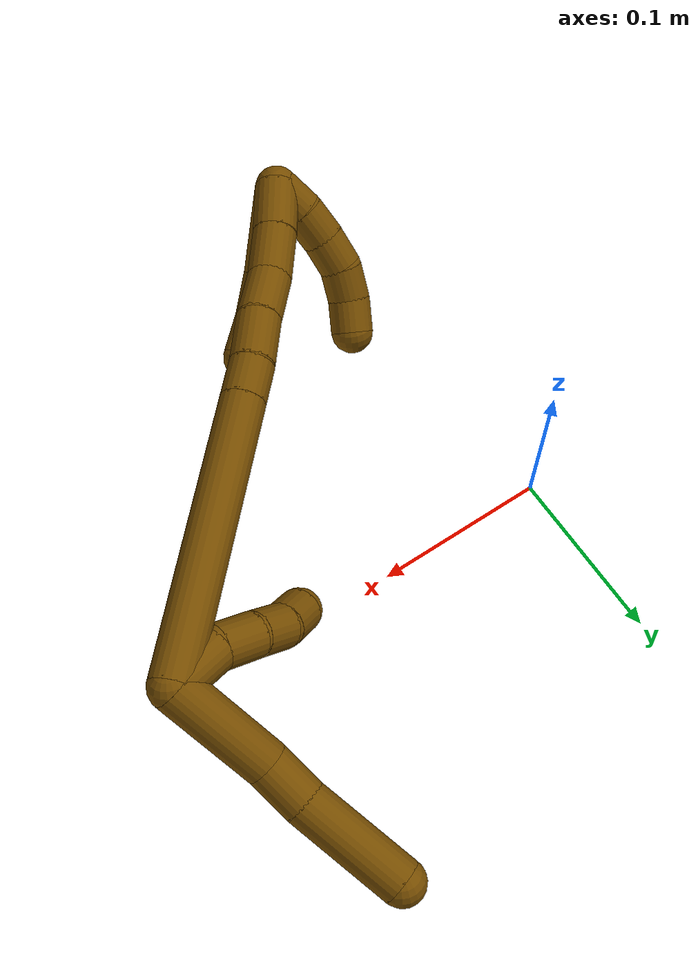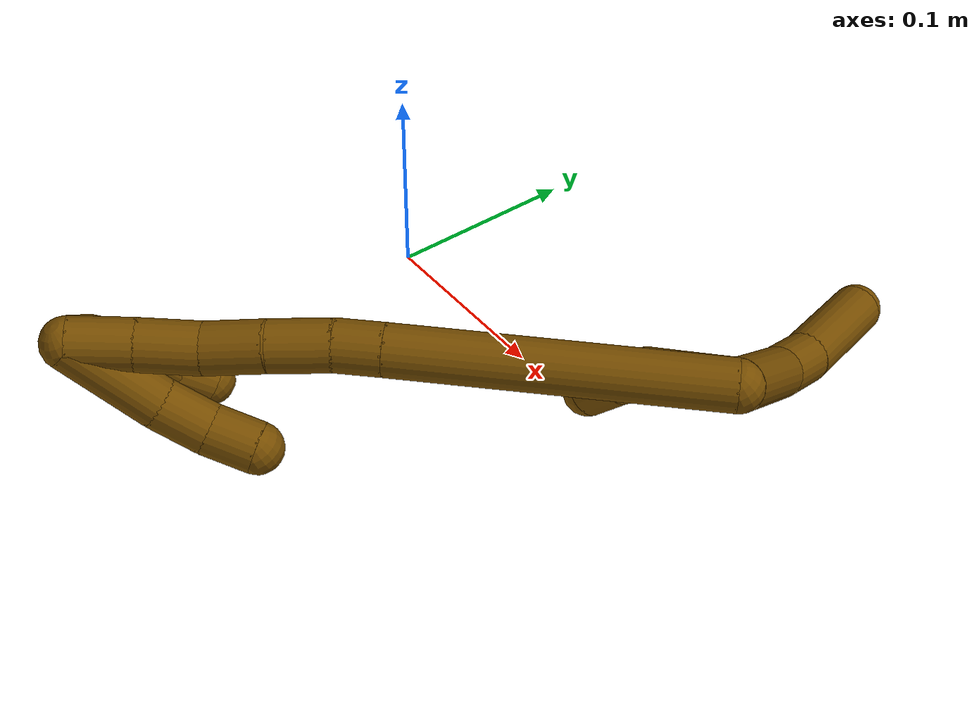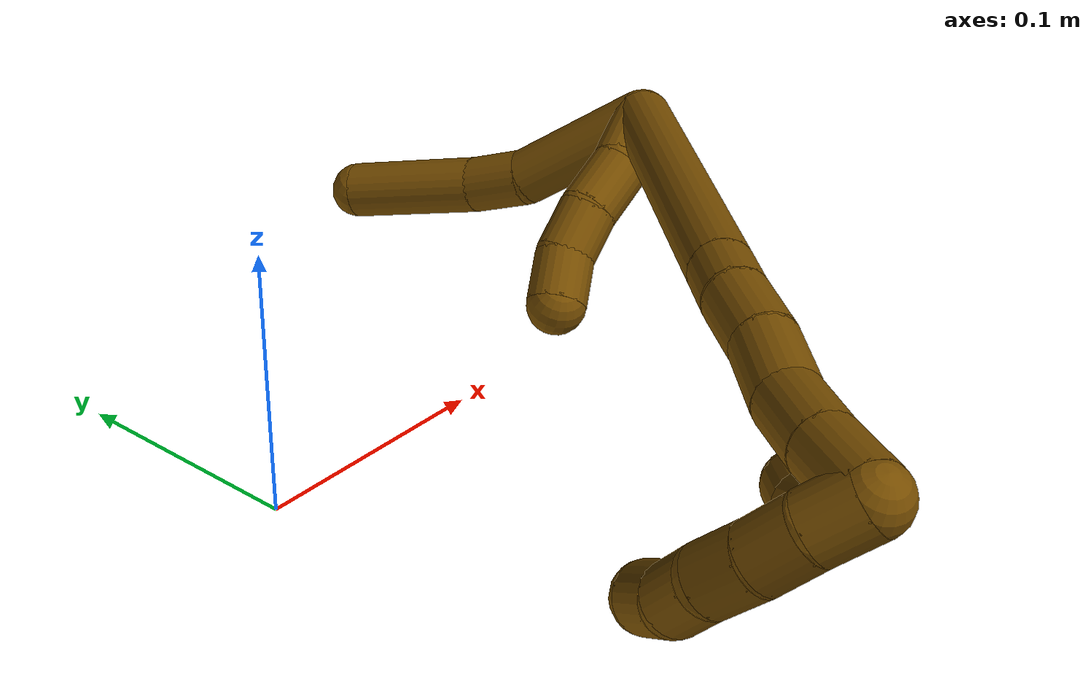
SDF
<sdf version="1.7">
 <world name="default">
  <model name="12">
   <static>0</static>
   <link name="12">
    <collision name="collision-cylinder-e_1_2_8">
     <pose>-0.016793 0.011876 -0.023418 -2.67228 -0.568999 1.77095</pose>
     <geometry><cylinder><radius>0.0125</radius><length>0.062336</length></cylinder></geometry>
     <surface>
      <friction><ode><mu>1.16</mu><mu2>1.16</mu2><slip1>0</slip1><slip2>0</slip2></ode></friction>
      <contact><ode><kp>1e+06</kp><kd>1</kd><max_vel>0</max_vel><min_depth>0.001</min_depth></ode></contact>
     </surface>
    </collision>
    <visual name="visual-cylinder-e_1_2_8">
     <pose>-0.016793 0.011876 -0.023418 -2.67228 -0.568999 1.77095</pose>
     <geometry><cylinder><radius>0.0125</radius><length>0.062336</length></cylinder></geometry>
     <material><ambient>0.466667 0.301961 0 1</ambient></material>
    </visual>
    <collision name="collision-cylinder-e_2_8_9">
     <pose>-0.039953 0.032127 -0.05497 -2.34156 -0.499248 1.08519</pose>
     <geometry><cylinder><radius>0.0125</radius><length>0.026597</length></cylinder></geometry>
     <surface>
      <friction><ode><mu>1.16</mu><mu2>1.16</mu2><slip1>0</slip1><slip2>0</slip2></ode></friction>
      <contact><ode><kp>1e+06</kp><kd>1</kd><max_vel>0</max_vel><min_depth>0.001</min_depth></ode></contact>
     </surface>
    </collision>
    <visual name="visual-cylinder-e_2_8_9">
     <pose>-0.039953 0.032127 -0.05497 -2.34156 -0.499248 1.08519</pose>
     <geometry><cylinder><radius>0.0125</radius><length>0.026597</length></cylinder></geometry>
     <material><ambient>0.466667 0.301961 0 1</ambient></material>
    </visual>
    <collision name="collision-cylinder-e_3_9_6">
     <pose>-0.063319 0.06084 -0.078259 -2.21118 -0.590464 1.08946</pose>
     <geometry><cylinder><radius>0.0125</radius><length>0.061067</length></cylinder></geometry>
     <surface>
      <friction><ode><mu>1.16</mu><mu2>1.16</mu2><slip1>0</slip1><slip2>0</slip2></ode></friction>
      <contact><ode><kp>1e+06</kp><kd>1</kd><max_vel>0</max_vel><min_depth>0.001</min_depth></ode></contact>
     </surface>
    </collision>
    <visual name="visual-cylinder-e_3_9_6">
     <pose>-0.063319 0.06084 -0.078259 -2.21118 -0.590464 1.08946</pose>
     <geometry><cylinder><radius>0.0125</radius><length>0.061067</length></cylinder></geometry>
     <material><ambient>0.466667 0.301961 0 1</ambient></material>
    </visual>
    <collision name="collision-cylinder-e_1_2_10">
     <pose>-0.012472 -0.009369 -0.001389 1.71794 -0.921293 -1.04401</pose>
     <geometry><cylinder><radius>0.0125</radius><length>0.031321</length></cylinder></geometry>
     <surface>
      <friction><ode><mu>1.16</mu><mu2>1.16</mu2><slip1>0</slip1><slip2>0</slip2></ode></friction>
      <contact><ode><kp>1e+06</kp><kd>1</kd><max_vel>0</max_vel><min_depth>0.001</min_depth></ode></contact>
     </surface>
    </collision>
    <visual name="visual-cylinder-e_1_2_10">
     <pose>-0.012472 -0.009369 -0.001389 1.71794 -0.921293 -1.04401</pose>
     <geometry><cylinder><radius>0.0125</radius><length>0.031321</length></cylinder></geometry>
     <material><ambient>0.466667 0.301961 0 1</ambient></material>
    </visual>
    <collision name="collision-cylinder-e_2_10_11">
     <pose>-0.035433 -0.02373 -0.007212 2.29719 -1.00389 -1.76975</pose>
     <geometry><cylinder><radius>0.0125</radius><length>0.024869</length></cylinder></geometry>
     <surface>
      <friction><ode><mu>1.16</mu><mu2>1.16</mu2><slip1>0</slip1><slip2>0</slip2></ode></friction>
      <contact><ode><kp>1e+06</kp><kd>1</kd><max_vel>0</max_vel><min_depth>0.001</min_depth></ode></contact>
     </surface>
    </collision>
    <visual name="visual-cylinder-e_2_10_11">
     <pose>-0.035433 -0.02373 -0.007212 2.29719 -1.00389 -1.76975</pose>
     <geometry><cylinder><radius>0.0125</radius><length>0.024869</length></cylinder></geometry>
     <material><ambient>0.466667 0.301961 0 1</ambient></material>
    </visual>
    <collision name="collision-cylinder-e_3_11_12">
     <pose>-0.053985 -0.03402 -0.016896 2.35145 -0.824375 -1.61818</pose>
     <geometry><cylinder><radius>0.0125</radius><length>0.021967</length></cylinder></geometry>
     <surface>
      <friction><ode><mu>1.16</mu><mu2>1.16</mu2><slip1>0</slip1><slip2>0</slip2></ode></friction>
      <contact><ode><kp>1e+06</kp><kd>1</kd><max_vel>0</max_vel><min_depth>0.001</min_depth></ode></contact>
     </surface>
    </collision>
    <visual name="visual-cylinder-e_3_11_12">
     <pose>-0.053985 -0.03402 -0.016896 2.35145 -0.824375 -1.61818</pose>
     <geometry><cylinder><radius>0.0125</radius><length>0.021967</length></cylinder></geometry>
     <material><ambient>0.466667 0.301961 0 1</ambient></material>
    </visual>
    <collision name="collision-cylinder-e_4_12_5">
     <pose>-0.068357 -0.047165 -0.026378 2.06561 -0.615809 -0.97933</pose>
     <geometry><cylinder><radius>0.0125</radius><length>0.021844</length></cylinder></geometry>
     <surface>
      <friction><ode><mu>1.16</mu><mu2>1.16</mu2><slip1>0</slip1><slip2>0</slip2></ode></friction>
      <contact><ode><kp>1e+06</kp><kd>1</kd><max_vel>0</max_vel><min_depth>0.001</min_depth></ode></contact>
     </surface>
    </collision>
    <visual name="visual-cylinder-e_4_12_5">
     <pose>-0.068357 -0.047165 -0.026378 2.06561 -0.615809 -0.97933</pose>
     <geometry><cylinder><radius>0.0125</radius><length>0.021844</length></cylinder></geometry>
     <material><ambient>0.466667 0.301961 0 1</ambient></material>
    </visual>
    <collision name="collision-cylinder-e_1_2_13">
     <pose>-0.037604 -0.0612 0.031415 1.09655 -0.500256 -0.309561</pose>
     <geometry><cylinder><radius>0.0125</radius><length>0.156798</length></cylinder></geometry>
     <surface>
      <friction><ode><mu>1.16</mu><mu2>1.16</mu2><slip1>0</slip1><slip2>0</slip2></ode></friction>
      <contact><ode><kp>1e+06</kp><kd>1</kd><max_vel>0</max_vel><min_depth>0.001</min_depth></ode></contact>
     </surface>
    </collision>
    <visual name="visual-cylinder-e_1_2_13">
     <pose>-0.037604 -0.0612 0.031415 1.09655 -0.500256 -0.309561</pose>
     <geometry><cylinder><radius>0.0125</radius><length>0.156798</length></cylinder></geometry>
     <material><ambient>0.466667 0.301961 0 1</ambient></material>
    </visual>
    <collision name="collision-cylinder-e_2_13_14">
     <pose>-0.080626 -0.131283 0.067282 1.10625 -0.499181 -0.312204</pose>
     <geometry><cylinder><radius>0.0125</radius><length>0.022634</length></cylinder></geometry>
     <surface>
      <friction><ode><mu>1.16</mu><mu2>1.16</mu2><slip1>0</slip1><slip2>0</slip2></ode></friction>
      <contact><ode><kp>1e+06</kp><kd>1</kd><max_vel>0</max_vel><min_depth>0.001</min_depth></ode></contact>
     </surface>
    </collision>
    <visual name="visual-cylinder-e_2_13_14">
     <pose>-0.080626 -0.131283 0.067282 1.10625 -0.499181 -0.312204</pose>
     <geometry><cylinder><radius>0.0125</radius><length>0.022634</length></cylinder></geometry>
     <material><ambient>0.466667 0.301961 0 1</ambient></material>
    </visual>
    <collision name="collision-cylinder-e_3_14_15">
     <pose>-0.091993 -0.152806 0.076956 1.17899 -0.410359 -0.276598</pose>
     <geometry><cylinder><radius>0.0125</radius><length>0.029829</length></cylinder></geometry>
     <surface>
      <friction><ode><mu>1.16</mu><mu2>1.16</mu2><slip1>0</slip1><slip2>0</slip2></ode></friction>
      <contact><ode><kp>1e+06</kp><kd>1</kd><max_vel>0</max_vel><min_depth>0.001</min_depth></ode></contact>
     </surface>
    </collision>
    <visual name="visual-cylinder-e_3_14_15">
     <pose>-0.091993 -0.152806 0.076956 1.17899 -0.410359 -0.276598</pose>
     <geometry><cylinder><radius>0.0125</radius><length>0.029829</length></cylinder></geometry>
     <material><ambient>0.466667 0.301961 0 1</ambient></material>
    </visual>
    <collision name="collision-cylinder-e_4_15_16">
     <pose>-0.104799 -0.178055 0.086018 1.27527 -0.479642 -0.358441</pose>
     <geometry><cylinder><radius>0.0125</radius><length>0.029714</length></cylinder></geometry>
     <surface>
      <friction><ode><mu>1.16</mu><mu2>1.16</mu2><slip1>0</slip1><slip2>0</slip2></ode></friction>
      <contact><ode><kp>1e+06</kp><kd>1</kd><max_vel>0</max_vel><min_depth>0.001</min_depth></ode></contact>
     </surface>
    </collision>
    <visual name="visual-cylinder-e_4_15_16">
     <pose>-0.104799 -0.178055 0.086018 1.27527 -0.479642 -0.358441</pose>
     <geometry><cylinder><radius>0.0125</radius><length>0.029714</length></cylinder></geometry>
     <material><ambient>0.466667 0.301961 0 1</ambient></material>
    </visual>
    <collision name="collision-cylinder-e_5_16_17">
     <pose>-0.117497 -0.202923 0.096561 1.07031 -0.396008 -0.236783</pose>
     <geometry><cylinder><radius>0.0125</radius><length>0.030289</length></cylinder></geometry>
     <surface>
      <friction><ode><mu>1.16</mu><mu2>1.16</mu2><slip1>0</slip1><slip2>0</slip2></ode></friction>
      <contact><ode><kp>1e+06</kp><kd>1</kd><max_vel>0</max_vel><min_depth>0.001</min_depth></ode></contact>
     </surface>
    </collision>
    <visual name="visual-cylinder-e_5_16_17">
     <pose>-0.117497 -0.202923 0.096561 1.07031 -0.396008 -0.236783</pose>
     <geometry><cylinder><radius>0.0125</radius><length>0.030289</length></cylinder></geometry>
     <material><ambient>0.466667 0.301961 0 1</ambient></material>
    </visual>
    <collision name="collision-cylinder-e_6_17_1">
     <pose>-0.128387 -0.227827 0.110391 1.05765 -0.334693 -0.196783</pose>
     <geometry><cylinder><radius>0.0125</radius><length>0.030735</length></cylinder></geometry>
     <surface>
      <friction><ode><mu>1.16</mu><mu2>1.16</mu2><slip1>0</slip1><slip2>0</slip2></ode></friction>
      <contact><ode><kp>1e+06</kp><kd>1</kd><max_vel>0</max_vel><min_depth>0.001</min_depth></ode></contact>
     </surface>
    </collision>
    <visual name="visual-cylinder-e_6_17_1">
     <pose>-0.128387 -0.227827 0.110391 1.05765 -0.334693 -0.196783</pose>
     <geometry><cylinder><radius>0.0125</radius><length>0.030735</length></cylinder></geometry>
     <material><ambient>0.466667 0.301961 0 1</ambient></material>
    </visual>
    <collision name="collision-cylinder-e_1_1_18">
     <pose>-0.124456 -0.231826 0.095759 -2.76336 0.366211 -1.53774</pose>
     <geometry><cylinder><radius>0.0125</radius><length>0.050153</length></cylinder></geometry>
     <surface>
      <friction><ode><mu>1.16</mu><mu2>1.16</mu2><slip1>0</slip1><slip2>0</slip2></ode></friction>
      <contact><ode><kp>1e+06</kp><kd>1</kd><max_vel>0</max_vel><min_depth>0.001</min_depth></ode></contact>
     </surface>
    </collision>
    <visual name="visual-cylinder-e_1_1_18">
     <pose>-0.124456 -0.231826 0.095759 -2.76336 0.366211 -1.53774</pose>
     <geometry><cylinder><radius>0.0125</radius><length>0.050153</length></cylinder></geometry>
     <material><ambient>0.466667 0.301961 0 1</ambient></material>
    </visual>
    <collision name="collision-cylinder-e_2_18_19">
     <pose>-0.109753 -0.217238 0.064115 -2.60031 0.460613 -1.40326</pose>
     <geometry><cylinder><radius>0.0125</radius><length>0.025751</length></cylinder></geometry>
     <surface>
      <friction><ode><mu>1.16</mu><mu2>1.16</mu2><slip1>0</slip1><slip2>0</slip2></ode></friction>
      <contact><ode><kp>1e+06</kp><kd>1</kd><max_vel>0</max_vel><min_depth>0.001</min_depth></ode></contact>
     </surface>
    </collision>
    <visual name="visual-cylinder-e_2_18_19">
     <pose>-0.109753 -0.217238 0.064115 -2.60031 0.460613 -1.40326</pose>
     <geometry><cylinder><radius>0.0125</radius><length>0.025751</length></cylinder></geometry>
     <material><ambient>0.466667 0.301961 0 1</ambient></material>
    </visual>
    <collision name="collision-cylinder-e_3_19_4">
     <pose>-0.097529 -0.204231 0.046951 -2.37119 0.569958 -1.25137</pose>
     <geometry><cylinder><radius>0.0125</radius><length>0.024096</length></cylinder></geometry>
     <surface>
      <friction><ode><mu>1.16</mu><mu2>1.16</mu2><slip1>0</slip1><slip2>0</slip2></ode></friction>
      <contact><ode><kp>1e+06</kp><kd>1</kd><max_vel>0</max_vel><min_depth>0.001</min_depth></ode></contact>
     </surface>
    </collision>
    <visual name="visual-cylinder-e_3_19_4">
     <pose>-0.097529 -0.204231 0.046951 -2.37119 0.569958 -1.25137</pose>
     <geometry><cylinder><radius>0.0125</radius><length>0.024096</length></cylinder></geometry>
     <material><ambient>0.466667 0.301961 0 1</ambient></material>
    </visual>
    <collision name="collision-cylinder-e_1_1_20">
     <pose>-0.139317 -0.237769 0.109895 -2.8007 -0.62884 2.16805</pose>
     <geometry><cylinder><radius>0.0125</radius><length>0.02</length></cylinder></geometry>
     <surface>
      <friction><ode><mu>1.16</mu><mu2>1.16</mu2><slip1>0</slip1><slip2>0</slip2></ode></friction>
      <contact><ode><kp>1e+06</kp><kd>1</kd><max_vel>0</max_vel><min_depth>0.001</min_depth></ode></contact>
     </surface>
    </collision>
    <visual name="visual-cylinder-e_1_1_20">
     <pose>-0.139317 -0.237769 0.109895 -2.8007 -0.62884 2.16805</pose>
     <geometry><cylinder><radius>0.0125</radius><length>0.02</length></cylinder></geometry>
     <material><ambient>0.466667 0.301961 0 1</ambient></material>
    </visual>
    <collision name="collision-cylinder-e_2_20_21">
     <pose>-0.149654 -0.23248 0.093702 -2.84867 -0.46168 2.02058</pose>
     <geometry><cylinder><radius>0.0125</radius><length>0.02</length></cylinder></geometry>
     <surface>
      <friction><ode><mu>1.16</mu><mu2>1.16</mu2><slip1>0</slip1><slip2>0</slip2></ode></friction>
      <contact><ode><kp>1e+06</kp><kd>1</kd><max_vel>0</max_vel><min_depth>0.001</min_depth></ode></contact>
     </surface>
    </collision>
    <visual name="visual-cylinder-e_2_20_21">
     <pose>-0.149654 -0.23248 0.093702 -2.84867 -0.46168 2.02058</pose>
     <geometry><cylinder><radius>0.0125</radius><length>0.02</length></cylinder></geometry>
     <material><ambient>0.466667 0.301961 0 1</ambient></material>
    </visual>
    <collision name="collision-cylinder-e_3_21_22">
     <pose>-0.157586 -0.226545 0.076373 -2.77621 -0.355218 1.54196</pose>
     <geometry><cylinder><radius>0.0125</radius><length>0.02</length></cylinder></geometry>
     <surface>
      <friction><ode><mu>1.16</mu><mu2>1.16</mu2><slip1>0</slip1><slip2>0</slip2></ode></friction>
      <contact><ode><kp>1e+06</kp><kd>1</kd><max_vel>0</max_vel><min_depth>0.001</min_depth></ode></contact>
     </surface>
    </collision>
    <visual name="visual-cylinder-e_3_21_22">
     <pose>-0.157586 -0.226545 0.076373 -2.77621 -0.355218 1.54196</pose>
     <geometry><cylinder><radius>0.0125</radius><length>0.02</length></cylinder></geometry>
     <material><ambient>0.466667 0.301961 0 1</ambient></material>
    </visual>
    <collision name="collision-cylinder-e_4_22_23">
     <pose>-0.161698 -0.220202 0.058096 -2.837 -0.063486 0.408012</pose>
     <geometry><cylinder><radius>0.0125</radius><length>0.02</length></cylinder></geometry>
     <surface>
      <friction><ode><mu>1.16</mu><mu2>1.16</mu2><slip1>0</slip1><slip2>0</slip2></ode></friction>
      <contact><ode><kp>1e+06</kp><kd>1</kd><max_vel>0</max_vel><min_depth>0.001</min_depth></ode></contact>
     </surface>
    </collision>
    <visual name="visual-cylinder-e_4_22_23">
     <pose>-0.161698 -0.220202 0.058096 -2.837 -0.063486 0.408012</pose>
     <geometry><cylinder><radius>0.0125</radius><length>0.02</length></cylinder></geometry>
     <material><ambient>0.466667 0.301961 0 1</ambient></material>
    </visual>
    <collision name="collision-cylinder-e_5_23_3">
     <pose>-0.160856 -0.212067 0.040127 -2.5949 0.148186 -0.51764</pose>
     <geometry><cylinder><radius>0.0125</radius><length>0.02</length></cylinder></geometry>
     <surface>
      <friction><ode><mu>1.16</mu><mu2>1.16</mu2><slip1>0</slip1><slip2>0</slip2></ode></friction>
      <contact><ode><kp>1e+06</kp><kd>1</kd><max_vel>0</max_vel><min_depth>0.001</min_depth></ode></contact>
     </surface>
    </collision>
    <visual name="visual-cylinder-e_5_23_3">
     <pose>-0.160856 -0.212067 0.040127 -2.5949 0.148186 -0.51764</pose>
     <geometry><cylinder><radius>0.0125</radius><length>0.02</length></cylinder></geometry>
     <material><ambient>0.466667 0.301961 0 1</ambient></material>
    </visual>
    <collision name="collision-sphere-3">
     <pose>-0.15938 -0.206925 0.031678 0 -0 0</pose>
     <geometry><sphere><radius>0.0125</radius></sphere></geometry>
     <surface>
      <friction><ode><mu>1.16</mu><mu2>1.16</mu2><slip1>0</slip1><slip2>0</slip2></ode></friction>
      <contact><ode><kp>1e+06</kp><kd>1</kd><max_vel>0</max_vel><min_depth>0.001</min_depth></ode></contact>
     </surface>
    </collision>
    <visual name="visual-sphere-3">
     <pose>-0.15938 -0.206925 0.031678 0 -0 0</pose>
     <geometry><sphere><radius>0.0125</radius></sphere></geometry>
     <material><ambient>0.466667 0.301961 0 1</ambient></material>
    </visual>
    <collision name="collision-sphere-23">
     <pose>-0.162333 -0.217209 0.048576 0 -0 0</pose>
     <geometry><sphere><radius>0.0125</radius></sphere></geometry>
     <surface>
      <friction><ode><mu>1.16</mu><mu2>1.16</mu2><slip1>0</slip1><slip2>0</slip2></ode></friction>
      <contact><ode><kp>1e+06</kp><kd>1</kd><max_vel>0</max_vel><min_depth>0.001</min_depth></ode></contact>
     </surface>
    </collision>
    <visual name="visual-sphere-23">
     <pose>-0.162333 -0.217209 0.048576 0 -0 0</pose>
     <geometry><sphere><radius>0.0125</radius></sphere></geometry>
     <material><ambient>0.466667 0.301961 0 1</ambient></material>
    </visual>
    <collision name="collision-sphere-22">
     <pose>-0.161064 -0.223195 0.067617 0 -0 0</pose>
     <geometry><sphere><radius>0.0125</radius></sphere></geometry>
     <surface>
      <friction><ode><mu>1.16</mu><mu2>1.16</mu2><slip1>0</slip1><slip2>0</slip2></ode></friction>
      <contact><ode><kp>1e+06</kp><kd>1</kd><max_vel>0</max_vel><min_depth>0.001</min_depth></ode></contact>
     </surface>
    </collision>
    <visual name="visual-sphere-22">
     <pose>-0.161064 -0.223195 0.067617 0 -0 0</pose>
     <geometry><sphere><radius>0.0125</radius></sphere></geometry>
     <material><ambient>0.466667 0.301961 0 1</ambient></material>
    </visual>
    <collision name="collision-sphere-21">
     <pose>-0.154108 -0.229895 0.08513 0 -0 0</pose>
     <geometry><sphere><radius>0.0125</radius></sphere></geometry>
     <surface>
      <friction><ode><mu>1.16</mu><mu2>1.16</mu2><slip1>0</slip1><slip2>0</slip2></ode></friction>
      <contact><ode><kp>1e+06</kp><kd>1</kd><max_vel>0</max_vel><min_depth>0.001</min_depth></ode></contact>
     </surface>
    </collision>
    <visual name="visual-sphere-21">
     <pose>-0.154108 -0.229895 0.08513 0 -0 0</pose>
     <geometry><sphere><radius>0.0125</radius></sphere></geometry>
     <material><ambient>0.466667 0.301961 0 1</ambient></material>
    </visual>
    <collision name="collision-sphere-20">
     <pose>-0.145199 -0.235065 0.102274 0 -0 0</pose>
     <geometry><sphere><radius>0.0125</radius></sphere></geometry>
     <surface>
      <friction><ode><mu>1.16</mu><mu2>1.16</mu2><slip1>0</slip1><slip2>0</slip2></ode></friction>
      <contact><ode><kp>1e+06</kp><kd>1</kd><max_vel>0</max_vel><min_depth>0.001</min_depth></ode></contact>
     </surface>
    </collision>
    <visual name="visual-sphere-20">
     <pose>-0.145199 -0.235065 0.102274 0 -0 0</pose>
     <geometry><sphere><radius>0.0125</radius></sphere></geometry>
     <material><ambient>0.466667 0.301961 0 1</ambient></material>
    </visual>
    <collision name="collision-sphere-4">
     <pose>-0.091028 -0.197167 0.039671 0 -0 0</pose>
     <geometry><sphere><radius>0.0125</radius></sphere></geometry>
     <surface>
      <friction><ode><mu>1.16</mu><mu2>1.16</mu2><slip1>0</slip1><slip2>0</slip2></ode></friction>
      <contact><ode><kp>1e+06</kp><kd>1</kd><max_vel>0</max_vel><min_depth>0.001</min_depth></ode></contact>
     </surface>
    </collision>
    <visual name="visual-sphere-4">
     <pose>-0.091028 -0.197167 0.039671 0 -0 0</pose>
     <geometry><sphere><radius>0.0125</radius></sphere></geometry>
     <material><ambient>0.466667 0.301961 0 1</ambient></material>
    </visual>
    <collision name="collision-sphere-11">
     <pose>-0.045922 -0.028722 -0.011647 0 -0 0</pose>
     <geometry><sphere><radius>0.0125</radius></sphere></geometry>
     <surface>
      <friction><ode><mu>1.16</mu><mu2>1.16</mu2><slip1>0</slip1><slip2>0</slip2></ode></friction>
      <contact><ode><kp>1e+06</kp><kd>1</kd><max_vel>0</max_vel><min_depth>0.001</min_depth></ode></contact>
     </surface>
    </collision>
    <visual name="visual-sphere-11">
     <pose>-0.045922 -0.028722 -0.011647 0 -0 0</pose>
     <geometry><sphere><radius>0.0125</radius></sphere></geometry>
     <material><ambient>0.466667 0.301961 0 1</ambient></material>
    </visual>
    <collision name="collision-sphere-10">
     <pose>-0.024943 -0.018738 -0.002777 0 -0 0</pose>
     <geometry><sphere><radius>0.0125</radius></sphere></geometry>
     <surface>
      <friction><ode><mu>1.16</mu><mu2>1.16</mu2><slip1>0</slip1><slip2>0</slip2></ode></friction>
      <contact><ode><kp>1e+06</kp><kd>1</kd><max_vel>0</max_vel><min_depth>0.001</min_depth></ode></contact>
     </surface>
    </collision>
    <visual name="visual-sphere-10">
     <pose>-0.024943 -0.018738 -0.002777 0 -0 0</pose>
     <geometry><sphere><radius>0.0125</radius></sphere></geometry>
     <material><ambient>0.466667 0.301961 0 1</ambient></material>
    </visual>
    <collision name="collision-sphere-6">
     <pose>-0.080319 0.081179 -0.093414 0 -0 0</pose>
     <geometry><sphere><radius>0.0125</radius></sphere></geometry>
     <surface>
      <friction><ode><mu>1.16</mu><mu2>1.16</mu2><slip1>0</slip1><slip2>0</slip2></ode></friction>
      <contact><ode><kp>1e+06</kp><kd>1</kd><max_vel>0</max_vel><min_depth>0.001</min_depth></ode></contact>
     </surface>
    </collision>
    <visual name="visual-sphere-6">
     <pose>-0.080319 0.081179 -0.093414 0 -0 0</pose>
     <geometry><sphere><radius>0.0125</radius></sphere></geometry>
     <material><ambient>0.466667 0.301961 0 1</ambient></material>
    </visual>
    <collision name="collision-sphere-9">
     <pose>-0.046319 0.040502 -0.063104 0 -0 0</pose>
     <geometry><sphere><radius>0.0125</radius></sphere></geometry>
     <surface>
      <friction><ode><mu>1.16</mu><mu2>1.16</mu2><slip1>0</slip1><slip2>0</slip2></ode></friction>
      <contact><ode><kp>1e+06</kp><kd>1</kd><max_vel>0</max_vel><min_depth>0.001</min_depth></ode></contact>
     </surface>
    </collision>
    <visual name="visual-sphere-9">
     <pose>-0.046319 0.040502 -0.063104 0 -0 0</pose>
     <geometry><sphere><radius>0.0125</radius></sphere></geometry>
     <material><ambient>0.466667 0.301961 0 1</ambient></material>
    </visual>
    <collision name="collision-sphere-2">
     <geometry><sphere><radius>0.0125</radius></sphere></geometry>
     <surface>
      <friction><ode><mu>1.16</mu><mu2>1.16</mu2><slip1>0</slip1><slip2>0</slip2></ode></friction>
      <contact><ode><kp>1e+06</kp><kd>1</kd><max_vel>0</max_vel><min_depth>0.001</min_depth></ode></contact>
     </surface>
    </collision>
    <visual name="visual-sphere-2">
     <geometry><sphere><radius>0.0125</radius></sphere></geometry>
     <material><ambient>0.466667 0.301961 0 1</ambient></material>
    </visual>
    <collision name="collision-sphere-19">
     <pose>-0.10403 -0.211295 0.05423 0 -0 0</pose>
     <geometry><sphere><radius>0.0125</radius></sphere></geometry>
     <surface>
      <friction><ode><mu>1.16</mu><mu2>1.16</mu2><slip1>0</slip1><slip2>0</slip2></ode></friction>
      <contact><ode><kp>1e+06</kp><kd>1</kd><max_vel>0</max_vel><min_depth>0.001</min_depth></ode></contact>
     </surface>
    </collision>
    <visual name="visual-sphere-19">
     <pose>-0.10403 -0.211295 0.05423 0 -0 0</pose>
     <geometry><sphere><radius>0.0125</radius></sphere></geometry>
     <material><ambient>0.466667 0.301961 0 1</ambient></material>
    </visual>
    <collision name="collision-sphere-8">
     <pose>-0.033586 0.023751 -0.046836 0 -0 0</pose>
     <geometry><sphere><radius>0.0125</radius></sphere></geometry>
     <surface>
      <friction><ode><mu>1.16</mu><mu2>1.16</mu2><slip1>0</slip1><slip2>0</slip2></ode></friction>
      <contact><ode><kp>1e+06</kp><kd>1</kd><max_vel>0</max_vel><min_depth>0.001</min_depth></ode></contact>
     </surface>
    </collision>
    <visual name="visual-sphere-8">
     <pose>-0.033586 0.023751 -0.046836 0 -0 0</pose>
     <geometry><sphere><radius>0.0125</radius></sphere></geometry>
     <material><ambient>0.466667 0.301961 0 1</ambient></material>
    </visual>
    <collision name="collision-sphere-12">
     <pose>-0.062048 -0.039319 -0.022144 0 -0 0</pose>
     <geometry><sphere><radius>0.0125</radius></sphere></geometry>
     <surface>
      <friction><ode><mu>1.16</mu><mu2>1.16</mu2><slip1>0</slip1><slip2>0</slip2></ode></friction>
      <contact><ode><kp>1e+06</kp><kd>1</kd><max_vel>0</max_vel><min_depth>0.001</min_depth></ode></contact>
     </surface>
    </collision>
    <visual name="visual-sphere-12">
     <pose>-0.062048 -0.039319 -0.022144 0 -0 0</pose>
     <geometry><sphere><radius>0.0125</radius></sphere></geometry>
     <material><ambient>0.466667 0.301961 0 1</ambient></material>
    </visual>
    <collision name="collision-sphere-5">
     <pose>-0.074665 -0.055011 -0.030612 0 -0 0</pose>
     <geometry><sphere><radius>0.0125</radius></sphere></geometry>
     <surface>
      <friction><ode><mu>1.16</mu><mu2>1.16</mu2><slip1>0</slip1><slip2>0</slip2></ode></friction>
      <contact><ode><kp>1e+06</kp><kd>1</kd><max_vel>0</max_vel><min_depth>0.001</min_depth></ode></contact>
     </surface>
    </collision>
    <visual name="visual-sphere-5">
     <pose>-0.074665 -0.055011 -0.030612 0 -0 0</pose>
     <geometry><sphere><radius>0.0125</radius></sphere></geometry>
     <material><ambient>0.466667 0.301961 0 1</ambient></material>
    </visual>
    <collision name="collision-sphere-13">
     <pose>-0.075208 -0.122399 0.062831 0 -0 0</pose>
     <geometry><sphere><radius>0.0125</radius></sphere></geometry>
     <surface>
      <friction><ode><mu>1.16</mu><mu2>1.16</mu2><slip1>0</slip1><slip2>0</slip2></ode></friction>
      <contact><ode><kp>1e+06</kp><kd>1</kd><max_vel>0</max_vel><min_depth>0.001</min_depth></ode></contact>
     </surface>
    </collision>
    <visual name="visual-sphere-13">
     <pose>-0.075208 -0.122399 0.062831 0 -0 0</pose>
     <geometry><sphere><radius>0.0125</radius></sphere></geometry>
     <material><ambient>0.466667 0.301961 0 1</ambient></material>
    </visual>
    <collision name="collision-sphere-14">
     <pose>-0.086043 -0.140166 0.071734 0 -0 0</pose>
     <geometry><sphere><radius>0.0125</radius></sphere></geometry>
     <surface>
      <friction><ode><mu>1.16</mu><mu2>1.16</mu2><slip1>0</slip1><slip2>0</slip2></ode></friction>
      <contact><ode><kp>1e+06</kp><kd>1</kd><max_vel>0</max_vel><min_depth>0.001</min_depth></ode></contact>
     </surface>
    </collision>
    <visual name="visual-sphere-14">
     <pose>-0.086043 -0.140166 0.071734 0 -0 0</pose>
     <geometry><sphere><radius>0.0125</radius></sphere></geometry>
     <material><ambient>0.466667 0.301961 0 1</ambient></material>
    </visual>
    <collision name="collision-sphere-15">
     <pose>-0.097943 -0.165446 0.082179 0 -0 0</pose>
     <geometry><sphere><radius>0.0125</radius></sphere></geometry>
     <surface>
      <friction><ode><mu>1.16</mu><mu2>1.16</mu2><slip1>0</slip1><slip2>0</slip2></ode></friction>
      <contact><ode><kp>1e+06</kp><kd>1</kd><max_vel>0</max_vel><min_depth>0.001</min_depth></ode></contact>
     </surface>
    </collision>
    <visual name="visual-sphere-15">
     <pose>-0.097943 -0.165446 0.082179 0 -0 0</pose>
     <geometry><sphere><radius>0.0125</radius></sphere></geometry>
     <material><ambient>0.466667 0.301961 0 1</ambient></material>
    </visual>
    <collision name="collision-sphere-16">
     <pose>-0.111655 -0.190664 0.089856 0 -0 0</pose>
     <geometry><sphere><radius>0.0125</radius></sphere></geometry>
     <surface>
      <friction><ode><mu>1.16</mu><mu2>1.16</mu2><slip1>0</slip1><slip2>0</slip2></ode></friction>
      <contact><ode><kp>1e+06</kp><kd>1</kd><max_vel>0</max_vel><min_depth>0.001</min_depth></ode></contact>
     </surface>
    </collision>
    <visual name="visual-sphere-16">
     <pose>-0.111655 -0.190664 0.089856 0 -0 0</pose>
     <geometry><sphere><radius>0.0125</radius></sphere></geometry>
     <material><ambient>0.466667 0.301961 0 1</ambient></material>
    </visual>
    <collision name="collision-sphere-17">
     <pose>-0.123339 -0.215182 0.103266 0 -0 0</pose>
     <geometry><sphere><radius>0.0125</radius></sphere></geometry>
     <surface>
      <friction><ode><mu>1.16</mu><mu2>1.16</mu2><slip1>0</slip1><slip2>0</slip2></ode></friction>
      <contact><ode><kp>1e+06</kp><kd>1</kd><max_vel>0</max_vel><min_depth>0.001</min_depth></ode></contact>
     </surface>
    </collision>
    <visual name="visual-sphere-17">
     <pose>-0.123339 -0.215182 0.103266 0 -0 0</pose>
     <geometry><sphere><radius>0.0125</radius></sphere></geometry>
     <material><ambient>0.466667 0.301961 0 1</ambient></material>
    </visual>
    <collision name="collision-sphere-1">
     <pose>-0.133435 -0.240473 0.117517 0 -0 0</pose>
     <geometry><sphere><radius>0.0125</radius></sphere></geometry>
     <surface>
      <friction><ode><mu>1.16</mu><mu2>1.16</mu2><slip1>0</slip1><slip2>0</slip2></ode></friction>
      <contact><ode><kp>1e+06</kp><kd>1</kd><max_vel>0</max_vel><min_depth>0.001</min_depth></ode></contact>
     </surface>
    </collision>
    <visual name="visual-sphere-1">
     <pose>-0.133435 -0.240473 0.117517 0 -0 0</pose>
     <geometry><sphere><radius>0.0125</radius></sphere></geometry>
     <material><ambient>0.466667 0.301961 0 1</ambient></material>
    </visual>
    <collision name="collision-sphere-18">
     <pose>-0.115476 -0.22318 0.074 0 -0 0</pose>
     <geometry><sphere><radius>0.0125</radius></sphere></geometry>
     <surface>
      <friction><ode><mu>1.16</mu><mu2>1.16</mu2><slip1>0</slip1><slip2>0</slip2></ode></friction>
      <contact><ode><kp>1e+06</kp><kd>1</kd><max_vel>0</max_vel><min_depth>0.001</min_depth></ode></contact>
     </surface>
    </collision>
    <visual name="visual-sphere-18">
     <pose>-0.115476 -0.22318 0.074 0 -0 0</pose>
     <geometry><sphere><radius>0.0125</radius></sphere></geometry>
     <material><ambient>0.466667 0.301961 0 1</ambient></material>
    </visual>
    <inertial>
     <pose>-0.077082 -0.103519 0.031861 0 -0 0</pose>
     <mass>0.75</mass>
     <inertia>
      <ixx>0.000203</ixx>
      <ixy>0</ixy>
      <ixz>0</ixz>
      <iyy>0.000128</iyy>
      <iyz>0</iyz>
      <izz>0.000418</izz>
     </inertia>
    </inertial>
   </link>
   <pose>0.235024 0.014023 0.075399 0.423784 -0.043376 -0.265195</pose>
  </model>
 </world>
</sdf>
